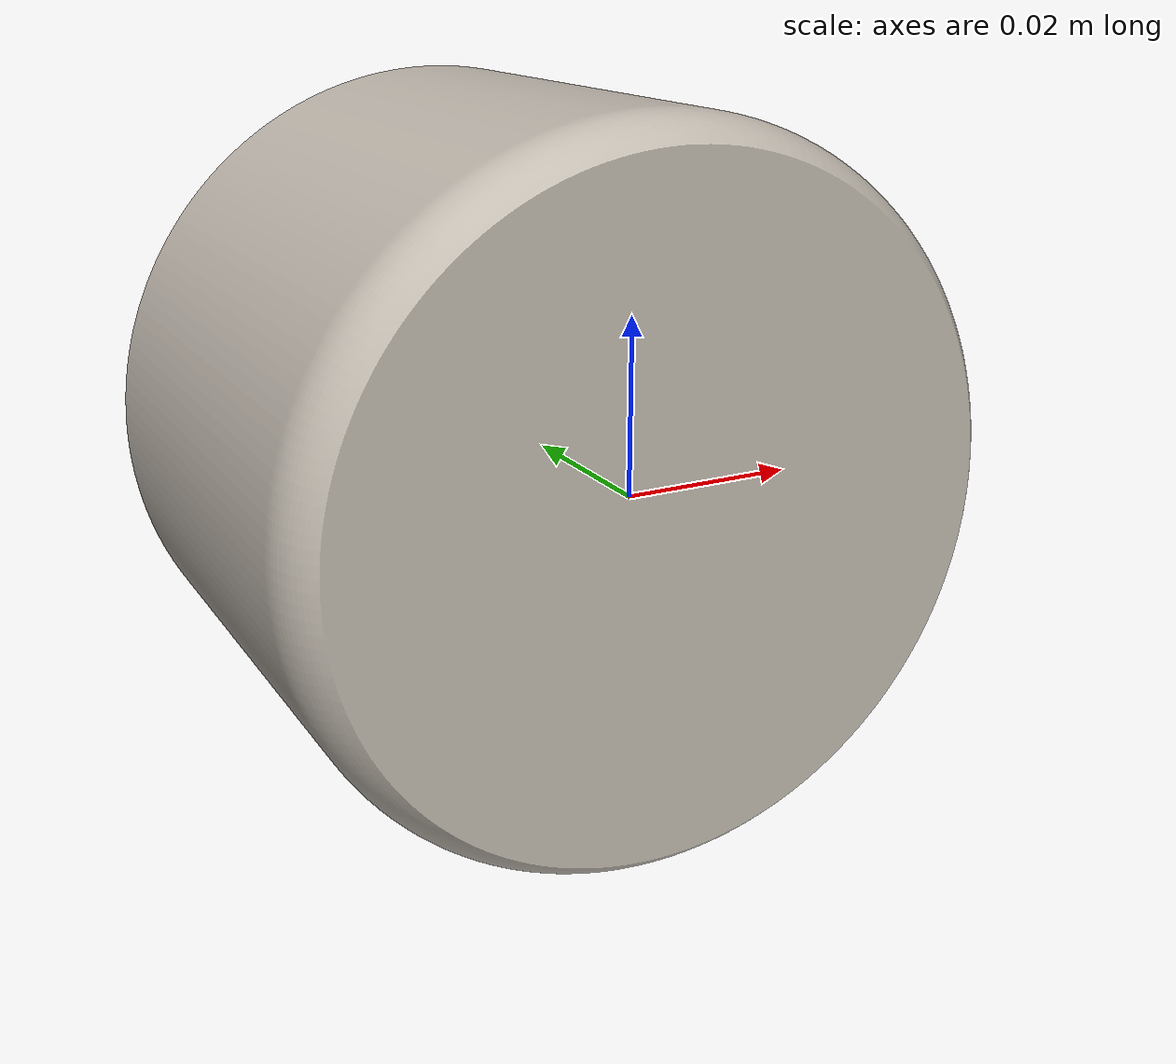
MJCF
<mujoco model="pipe">
  <asset>
    <mesh file="../meshes/endcap.stl" name="pipe_mesh" scale="0.003 0.003 0.003"/>
    <texture file="../textures/endcap.png" type="2d" name="tex-pipe" />
    <material name="pipe" reflectance="0.7" texrepeat="15 15" texture="tex-pipe" texuniform="true"/>
  </asset>
  <worldbody>
    <body>
      <body name="object">
        <geom pos="0 0 0" mesh="pipe_mesh" type="mesh" solimp="0.998 0.998 0.001" solref="0.001 1" density="50" friction="0.95 0.3 0.1" material="pipe" group="0" condim="4"/>
      </body>
      <site rgba="0 0 0 0" size="0.005" pos="0 0 -0.045" name="bottom_site"/>
      <site rgba="0 0 0 0" size="0.005" pos="0 0 0.03" name="top_site"/>
      <site rgba="0 0 0 0" size="0.005" pos="0.03 0.03 0" name="horizontal_radius_site"/>
    </body>
  </worldbody>
</mujoco>
